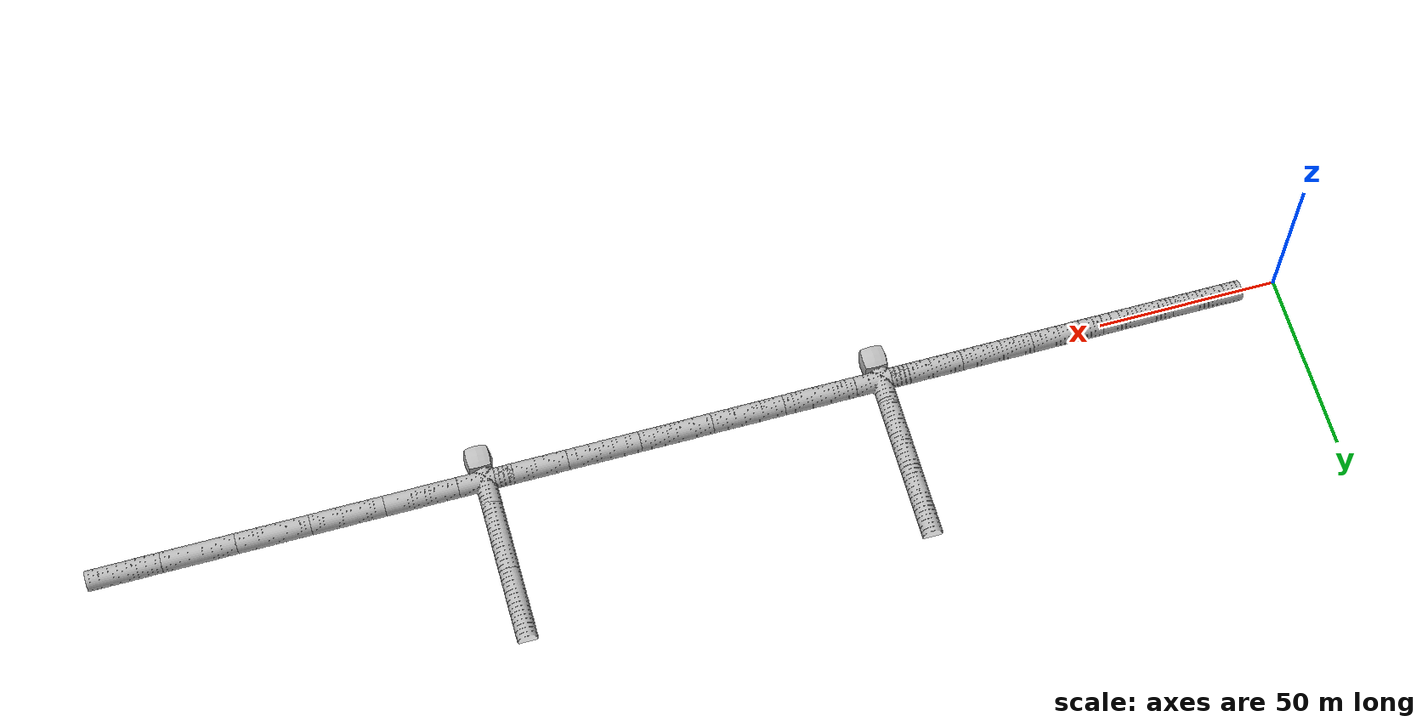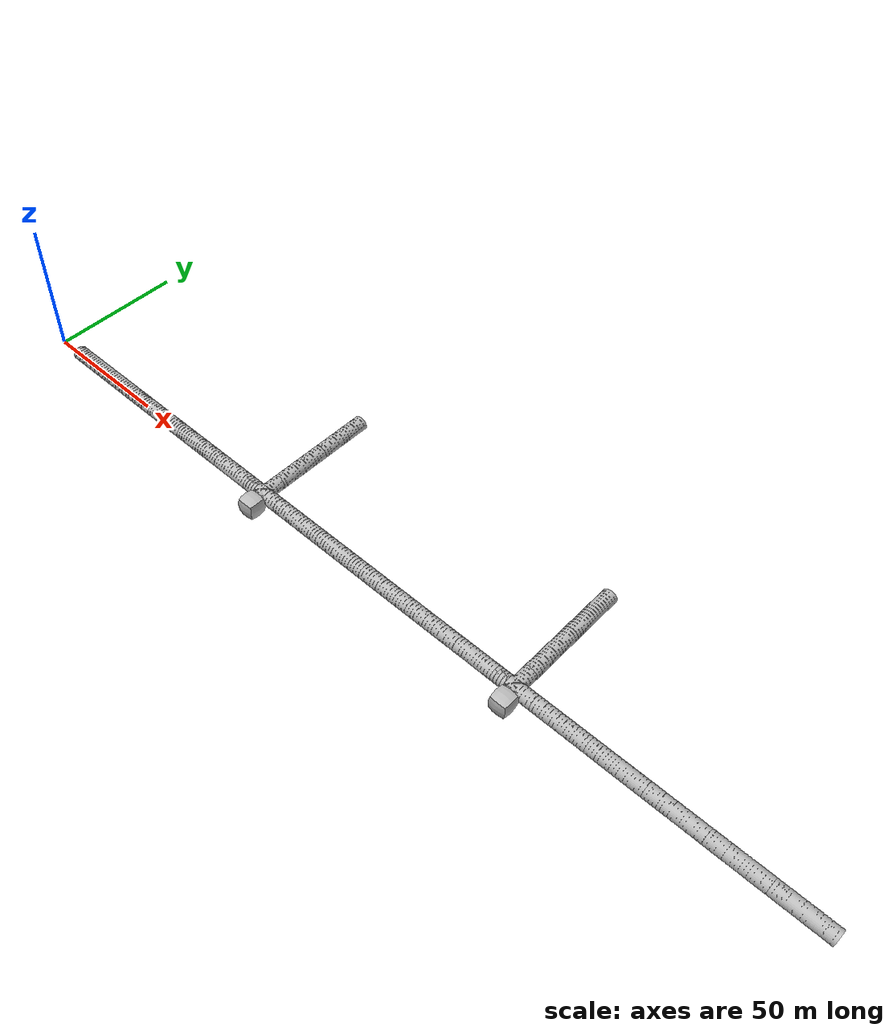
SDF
<sdf version="1.6">
 <world name="tunnel_practice_1">
  <scene>
   <ambient>0.2 0.2 0.2 1.0</ambient>
   <background>0.34 0.39 0.43 1.0</background>
   <grid>false</grid>
   <origin_visual>false</origin_visual>
  </scene>
  <light name="user_point_light_0" type="point">
   <pose>30.0 0.0 3.0 0 -0 0</pose>
   <diffuse>0.5 0.5 0.5 1</diffuse>
   <specular>0.1 0.1 0.1 1</specular>
   <attenuation>
    <range>40</range>
    <constant>0.5</constant>
    <linear>0.0</linear>
    <quadratic>0.0</quadratic>
   </attenuation>
   <cast_shadows>0</cast_shadows>
   <direction>0 0 -1</direction>
  </light>
  <light name="user_point_light_1" type="point">
   <pose>60.0 0.0 3.0 0 -0 0</pose>
   <diffuse>0.5 0.5 0.5 1</diffuse>
   <specular>0.1 0.1 0.1 1</specular>
   <attenuation>
    <range>40</range>
    <constant>0.5</constant>
    <linear>0.0</linear>
    <quadratic>0.0</quadratic>
   </attenuation>
   <cast_shadows>0</cast_shadows>
   <direction>0 0 -1</direction>
  </light>
  <light name="user_point_light_2" type="point">
   <pose>90.0 0.0 3.0 0 -0 0</pose>
   <diffuse>0.5 0.5 0.5 1</diffuse>
   <specular>0.1 0.1 0.1 1</specular>
   <attenuation>
    <range>40</range>
    <constant>0.5</constant>
    <linear>0.0</linear>
    <quadratic>0.0</quadratic>
   </attenuation>
   <cast_shadows>0</cast_shadows>
   <direction>0 0 -1</direction>
  </light>
  <light name="user_point_light_3" type="point">
   <pose>120.0 0.0 3.0 0 -0 0</pose>
   <diffuse>0.5 0.5 0.5 1</diffuse>
   <specular>0.1 0.1 0.1 1</specular>
   <attenuation>
    <range>40</range>
    <constant>0.5</constant>
    <linear>0.0</linear>
    <quadratic>0.0</quadratic>
   </attenuation>
   <cast_shadows>0</cast_shadows>
   <direction>0 0 -1</direction>
  </light>
  <light name="user_point_light_4" type="point">
   <pose>150.0 0.0 3.0 0 -0 0</pose>
   <diffuse>0.5 0.5 0.5 1</diffuse>
   <specular>0.1 0.1 0.1 1</specular>
   <attenuation>
    <range>40</range>
    <constant>0.5</constant>
    <linear>0.0</linear>
    <quadratic>0.0</quadratic>
   </attenuation>
   <cast_shadows>0</cast_shadows>
   <direction>0 0 -1</direction>
  </light>
  <light name="user_point_light_5" type="point">
   <pose>180.0 0.0 3.0 0 -0 0</pose>
   <diffuse>0.5 0.5 0.5 1</diffuse>
   <specular>0.1 0.1 0.1 1</specular>
   <attenuation>
    <range>40</range>
    <constant>0.5</constant>
    <linear>0.0</linear>
    <quadratic>0.0</quadratic>
   </attenuation>
   <cast_shadows>0</cast_shadows>
   <direction>0 0 -1</direction>
  </light>
  <light name="user_point_light_6" type="point">
   <pose>210.0 0.0 3.0 0 -0 0</pose>
   <diffuse>0.5 0.5 0.5 1</diffuse>
   <specular>0.1 0.1 0.1 1</specular>
   <attenuation>
    <range>40</range>
    <constant>0.5</constant>
    <linear>0.0</linear>
    <quadratic>0.0</quadratic>
   </attenuation>
   <cast_shadows>0</cast_shadows>
   <direction>0 0 -1</direction>
  </light>
  <light name="user_point_light_7" type="point">
   <pose>240.0 0.0 3.0 0 -0 0</pose>
   <diffuse>0.5 0.5 0.5 1</diffuse>
   <specular>0.1 0.1 0.1 1</specular>
   <attenuation>
    <range>40</range>
    <constant>0.5</constant>
    <linear>0.0</linear>
    <quadratic>0.0</quadratic>
   </attenuation>
   <cast_shadows>0</cast_shadows>
   <direction>0 0 -1</direction>
  </light>
  <light name="user_point_light_8" type="point">
   <pose>270.0 0.0 3.0 0 -0 0</pose>
   <diffuse>0.5 0.5 0.5 1</diffuse>
   <specular>0.1 0.1 0.1 1</specular>
   <attenuation>
    <range>40</range>
    <constant>0.5</constant>
    <linear>0.0</linear>
    <quadratic>0.0</quadratic>
   </attenuation>
   <cast_shadows>0</cast_shadows>
   <direction>0 0 -1</direction>
  </light>
  <light name="user_point_light_9" type="point">
   <pose>300.0 0.0 3.0 0 -0 0</pose>
   <diffuse>0.5 0.5 0.5 1</diffuse>
   <specular>0.1 0.1 0.1 1</specular>
   <attenuation>
    <range>40</range>
    <constant>0.5</constant>
    <linear>0.0</linear>
    <quadratic>0.0</quadratic>
   </attenuation>
   <cast_shadows>0</cast_shadows>
   <direction>0 0 -1</direction>
  </light>
  <light name="user_point_light_10" type="point">
   <pose>330.0 0.0 3.0 0 -0 0</pose>
   <diffuse>0.5 0.5 0.5 1</diffuse>
   <specular>0.1 0.1 0.1 1</specular>
   <attenuation>
    <range>40</range>
    <constant>0.5</constant>
    <linear>0.0</linear>
    <quadratic>0.0</quadratic>
   </attenuation>
   <cast_shadows>0</cast_shadows>
   <direction>0 0 -1</direction>
  </light>
  <light name="user_point_light_11" type="point">
   <pose>360.0 0.0 3.0 0 -0 0</pose>
   <diffuse>0.5 0.5 0.5 1</diffuse>
   <specular>0.1 0.1 0.1 1</specular>
   <attenuation>
    <range>40</range>
    <constant>0.5</constant>
    <linear>0.0</linear>
    <quadratic>0.0</quadratic>
   </attenuation>
   <cast_shadows>0</cast_shadows>
   <direction>0 0 -1</direction>
  </light>
  <light name="user_point_light_12" type="point">
   <pose>390.0 0.0 3.0 0 -0 0</pose>
   <diffuse>0.5 0.5 0.5 1</diffuse>
   <specular>0.1 0.1 0.1 1</specular>
   <attenuation>
    <range>40</range>
    <constant>0.5</constant>
    <linear>0.0</linear>
    <quadratic>0.0</quadratic>
   </attenuation>
   <cast_shadows>0</cast_shadows>
   <direction>0 0 -1</direction>
  </light>
  <include><uri>model://tunnel_tile_5</uri><name>tile_1</name><pose>20 0 0 0 0 1.5708</pose></include>
  <include><uri>model://tunnel_tile_5</uri><name>tile_2</name><pose>40 0 0 0 0 1.5708</pose></include>
  <include><uri>model://tunnel_tile_5</uri><name>tile_3</name><pose>60 0 0 0 0 1.5708</pose></include>
  <include><uri>model://tunnel_tile_5</uri><name>tile_4</name><pose>80 0 0 0 0 1.5708</pose></include>
  <include><uri>model://tunnel_tile_5</uri><name>tile_5</name><pose>100 0 0 0 0 1.5708</pose></include>
  <include><uri>model://tunnel_intersection</uri><name>tile_7</name><pose>120 0 0 0 0 1.5708</pose></include>
  <include><uri>model://tunnel_tile_blocker</uri><name>blocker_1</name><pose>113 -6 0 0 0 0</pose></include>
  <include><uri>model://tunnel_tile_5</uri><name>tile_rot_1</name><pose>112.5 17 0 0 0 0</pose></include>
  <include><uri>model://tunnel_tile_5</uri><name>tile_rot_2</name><pose>112.5 37 0 0 0 0</pose></include>
  <include><uri>model://tunnel_tile_5</uri><name>tile_8</name><pose>130 0 0 0 0 1.5708</pose></include>
  <include><uri>model://tunnel_tile_5</uri><name>tile_9</name><pose>150 0 0 0 0 1.5708</pose></include>
  <include><uri>model://tunnel_tile_5</uri><name>tile_10</name><pose>170 0 0 0 0 1.5708</pose></include>
  <include><uri>model://tunnel_tile_5</uri><name>tile_11</name><pose>190 0 0 0 0 1.5708</pose></include>
  <include><uri>model://tunnel_tile_5</uri><name>tile_12</name><pose>210 0 0 0 0 1.5708</pose></include>
  <include><uri>model://tunnel_intersection</uri><name>tile_13</name><pose>230 0 0 0 0 1.5708</pose></include>
  <include><uri>model://tunnel_tile_blocker</uri><name>blocker_2</name><pose>223 -6 0 0 0 0</pose></include>
  <include><uri>model://tunnel_tile_5</uri><name>tile_rot_3</name><pose>222.5 17 0 0 0 0</pose></include>
  <include><uri>model://tunnel_tile_5</uri><name>tile_rot_4</name><pose>222.5 37 0 0 0 0</pose></include>
  <include><uri>model://tunnel_tile_5</uri><name>tile_14</name><pose>240 0 0 0 0 1.5708</pose></include>
  <include><uri>model://tunnel_tile_5</uri><name>tile_15</name><pose>260 0 0 0 0 1.5708</pose></include>
  <include><uri>model://tunnel_tile_5</uri><name>tile_16</name><pose>280 0 0 0 0 1.5708</pose></include>
  <include><uri>model://tunnel_tile_5</uri><name>tile_17</name><pose>300 0 0 0 0 1.5708</pose></include>
  <include><uri>model://tunnel_tile_5</uri><name>tile_18</name><pose>320 0 0 0 0 1.5708</pose></include>
  <light name="user_point_light_final" type="point">
   <pose>113.0 25.0 3.0 0 -0 0</pose>
   <diffuse>0.5 0.5 0.5 1</diffuse>
   <specular>0.1 0.1 0.1 1</specular>
   <attenuation>
    <range>40</range>
    <constant>0.5</constant>
    <linear>0.0</linear>
    <quadratic>0.0</quadratic>
   </attenuation>
   <cast_shadows>0</cast_shadows>
   <direction>0 0 -1</direction>
  </light>
 </world>
</sdf>

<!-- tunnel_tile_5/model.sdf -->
<sdf version="1.6">
  <model name="tunnel_tile_5">
    <static>true</static>
    <link name="link">
      <collision name="collision">
        <geometry>
          <mesh>
            <uri>model://tunnel_tile_5/meshes/tunnel_tile_5.dae</uri>
          </mesh>
        </geometry>
      </collision>
      <collision name="collision_ground">
        <geometry>
          <box>
            <size>5 20 0.001</size>
          </box>
        </geometry>
      </collision>
      <visual name="visual">
        <geometry>
          <mesh>
            <uri>model://tunnel_tile_5/meshes/tunnel_tile_5.dae</uri>
          </mesh>
        </geometry>
      </visual>
    </link>
  </model>
</sdf>

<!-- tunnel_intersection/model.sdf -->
<sdf version="1.6">
  <model name="tunnel_intersection">
    <static>true</static>
    <link name="link">
      <collision name="collision">
        <geometry>
          <mesh>
            <scale>0.01 0.01 0.01</scale>
            <uri>model://tunnel_intersection/meshes/Tunnel_Intersection.obj</uri>
          </mesh>
        </geometry>
      </collision>
      <visual name="visual">
        <geometry>
          <mesh>
            <scale>0.01 0.01 0.01</scale>
            <uri>model://tunnel_intersection/meshes/Tunnel_Intersection.obj</uri>
          </mesh>
        </geometry>
      </visual>
    </link>
  </model>
</sdf>

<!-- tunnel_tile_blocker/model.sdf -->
<sdf version="1.6">
  <model name="tunnel_tile_blocker">
    <static>true</static>
    <link name="link">
      <pose>0 0 0 0 0 0</pose>
      <collision name="collision">
        <geometry>
          <mesh>
            <uri>model://tunnel_tile_blocker/meshes/tunnel_tile_blocker.dae</uri>
          </mesh>
        </geometry>
      </collision>
      <visual name="visual">
        <geometry>
          <mesh>
            <uri>model://tunnel_tile_blocker/meshes/tunnel_tile_blocker.dae</uri>
          </mesh>
        </geometry>
      </visual>
    </link>
  </model>
</sdf>
